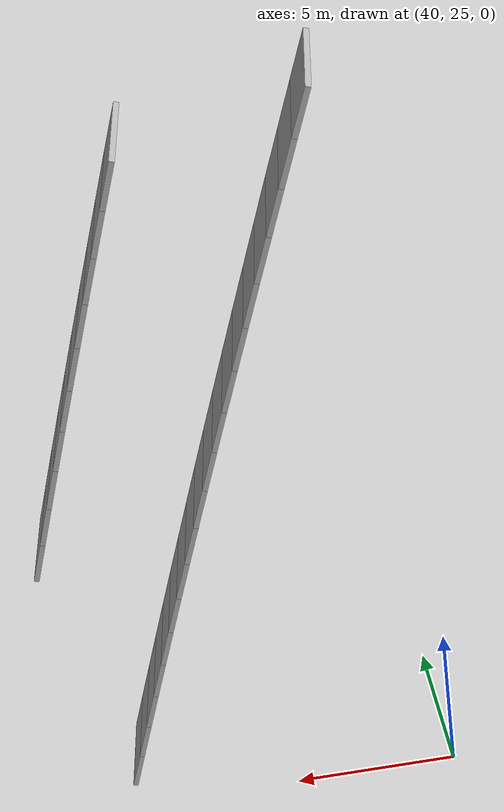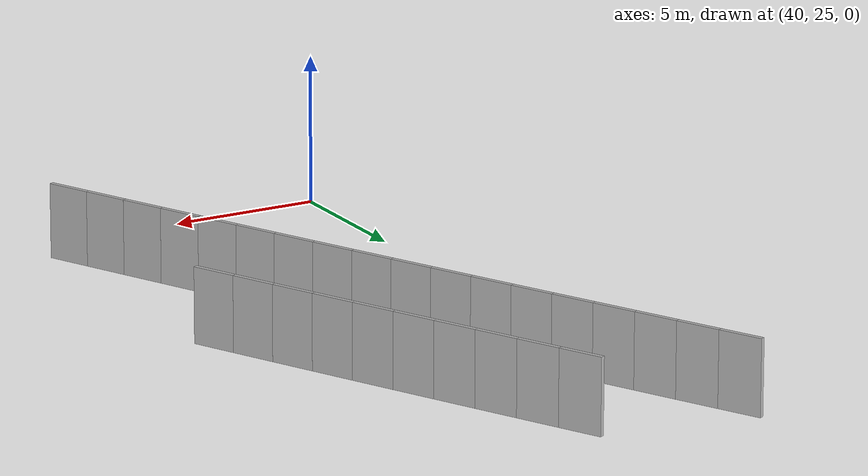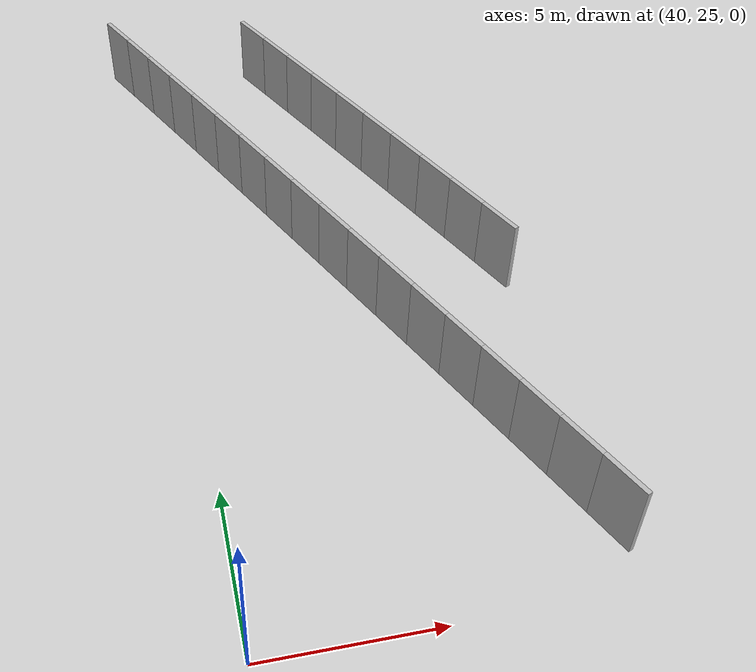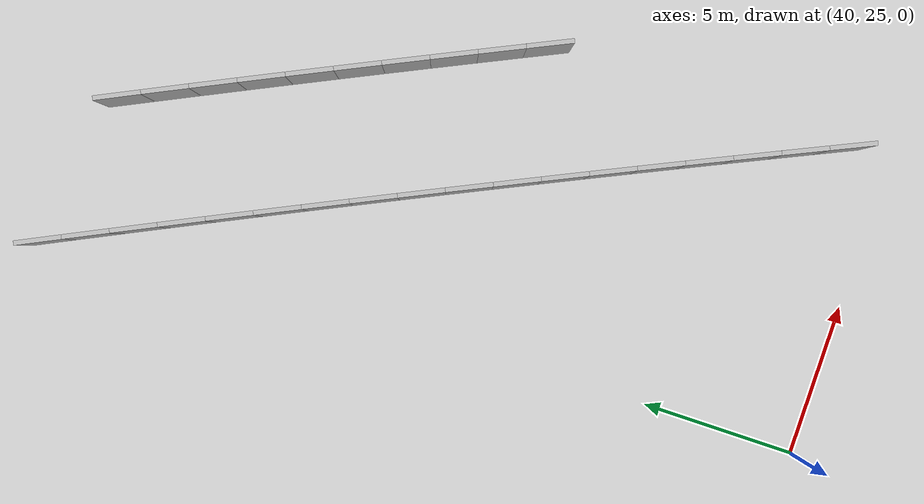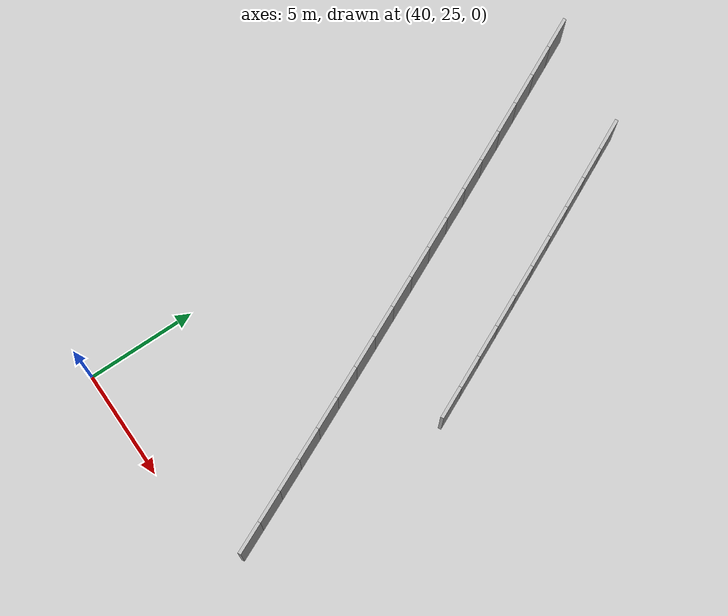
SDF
<?xml version="1.0" ?>
<sdf version="1.6">
  <model name="sps_4335">
    <pose frame="">0 0 0 0 -0 0</pose>
    <static>1</static>
    <self_collide>0</self_collide>
    <allow_auto_disable>0</allow_auto_disable>
    <link name="Wall10191">
      <kinematic>0</kinematic>
      <gravity>1</gravity>
      <self_collide>0</self_collide>
      <collision name="collision">
        <geometry>
          <box>
            <size>1.49636 0.15 2.5</size>
          </box>
        </geometry>
        <pose frame="">0 0 0 0 -0 0</pose>
      </collision>
      <visual name="visual">
        <geometry>
          <box>
            <size>1.49636 0.15 2.5</size>
          </box>
        </geometry>
        <pose frame="">0 0 0 0 -0 0</pose>
        <cast_shadows>1</cast_shadows>
        <transparency>0.0</transparency>
      </visual>
      <pose frame="">49.7951 26.7851 1.25 0 -0 1.99711</pose>
    </link>
    <link name="Wall10192">
      <kinematic>0</kinematic>
      <gravity>1</gravity>
      <self_collide>0</self_collide>
      <collision name="collision">
        <geometry>
          <box>
            <size>1.49652 0.15 2.5</size>
          </box>
        </geometry>
        <pose frame="">0 0 0 0 -0 0</pose>
      </collision>
      <visual name="visual">
        <geometry>
          <box>
            <size>1.49652 0.15 2.5</size>
          </box>
        </geometry>
        <pose frame="">0 0 0 0 -0 0</pose>
        <cast_shadows>1</cast_shadows>
        <transparency>0.0</transparency>
      </visual>
      <pose frame="">49.1752 28.1471 1.25 0 -0 1.99872</pose>
    </link>
    <link name="Wall10193">
      <kinematic>0</kinematic>
      <gravity>1</gravity>
      <self_collide>0</self_collide>
      <collision name="collision">
        <geometry>
          <box>
            <size>1.49652 0.15 2.5</size>
          </box>
        </geometry>
        <pose frame="">0 0 0 0 -0 0</pose>
      </collision>
      <visual name="visual">
        <geometry>
          <box>
            <size>1.49652 0.15 2.5</size>
          </box>
        </geometry>
        <pose frame="">0 0 0 0 -0 0</pose>
        <cast_shadows>1</cast_shadows>
        <transparency>0.0</transparency>
      </visual>
      <pose frame="">48.5531 29.5082 1.25 0 -0 2.00029</pose>
    </link>
    <link name="Wall10194">
      <kinematic>0</kinematic>
      <gravity>1</gravity>
      <self_collide>0</self_collide>
      <collision name="collision">
        <geometry>
          <box>
            <size>1.49635 0.15 2.5</size>
          </box>
        </geometry>
        <pose frame="">0 0 0 0 -0 0</pose>
      </collision>
      <visual name="visual">
        <geometry>
          <box>
            <size>1.49635 0.15 2.5</size>
          </box>
        </geometry>
        <pose frame="">0 0 0 0 -0 0</pose>
        <cast_shadows>1</cast_shadows>
        <transparency>0.0</transparency>
      </visual>
      <pose frame="">47.9288 30.8682 1.25 0 -0 2.002</pose>
    </link>
    <link name="Wall10195">
      <kinematic>0</kinematic>
      <gravity>1</gravity>
      <self_collide>0</self_collide>
      <collision name="collision">
        <geometry>
          <box>
            <size>1.4965 0.15 2.5</size>
          </box>
        </geometry>
        <pose frame="">0 0 0 0 -0 0</pose>
      </collision>
      <visual name="visual">
        <geometry>
          <box>
            <size>1.4965 0.15 2.5</size>
          </box>
        </geometry>
        <pose frame="">0 0 0 0 -0 0</pose>
        <cast_shadows>1</cast_shadows>
        <transparency>0.0</transparency>
      </visual>
      <pose frame="">47.3024 32.2272 1.25 0 -0 2.00339</pose>
    </link>
    <link name="Wall10196">
      <kinematic>0</kinematic>
      <gravity>1</gravity>
      <self_collide>0</self_collide>
      <collision name="collision">
        <geometry>
          <box>
            <size>1.49651 0.15 2.5</size>
          </box>
        </geometry>
        <pose frame="">0 0 0 0 -0 0</pose>
      </collision>
      <visual name="visual">
        <geometry>
          <box>
            <size>1.49651 0.15 2.5</size>
          </box>
        </geometry>
        <pose frame="">0 0 0 0 -0 0</pose>
        <cast_shadows>1</cast_shadows>
        <transparency>0.0</transparency>
      </visual>
      <pose frame="">46.6739 33.5853 1.25 0 -0 2.00506</pose>
    </link>
    <link name="Wall10197">
      <kinematic>0</kinematic>
      <gravity>1</gravity>
      <self_collide>0</self_collide>
      <collision name="collision">
        <geometry>
          <box>
            <size>1.49647 0.15 2.5</size>
          </box>
        </geometry>
        <pose frame="">0 0 0 0 -0 0</pose>
      </collision>
      <visual name="visual">
        <geometry>
          <box>
            <size>1.49647 0.15 2.5</size>
          </box>
        </geometry>
        <pose frame="">0 0 0 0 -0 0</pose>
        <cast_shadows>1</cast_shadows>
        <transparency>0.0</transparency>
      </visual>
      <pose frame="">46.0431 34.9424 1.25 0 -0 2.00664</pose>
    </link>
    <link name="Wall10198">
      <kinematic>0</kinematic>
      <gravity>1</gravity>
      <self_collide>0</self_collide>
      <collision name="collision">
        <geometry>
          <box>
            <size>1.49666 0.15 2.5</size>
          </box>
        </geometry>
        <pose frame="">0 0 0 0 -0 0</pose>
      </collision>
      <visual name="visual">
        <geometry>
          <box>
            <size>1.49666 0.15 2.5</size>
          </box>
        </geometry>
        <pose frame="">0 0 0 0 -0 0</pose>
        <cast_shadows>1</cast_shadows>
        <transparency>0.0</transparency>
      </visual>
      <pose frame="">45.4104 36.2986 1.25 0 -0 2.00807</pose>
    </link>
    <link name="Wall10199">
      <kinematic>0</kinematic>
      <gravity>1</gravity>
      <self_collide>0</self_collide>
      <collision name="collision">
        <geometry>
          <box>
            <size>1.49643 0.15 2.5</size>
          </box>
        </geometry>
        <pose frame="">0 0 0 0 -0 0</pose>
      </collision>
      <visual name="visual">
        <geometry>
          <box>
            <size>1.49643 0.15 2.5</size>
          </box>
        </geometry>
        <pose frame="">0 0 0 0 -0 0</pose>
        <cast_shadows>1</cast_shadows>
        <transparency>0.0</transparency>
      </visual>
      <pose frame="">44.7755 37.6538 1.25 0 -0 2.00976</pose>
    </link>
    <link name="Wall10200">
      <kinematic>0</kinematic>
      <gravity>1</gravity>
      <self_collide>0</self_collide>
      <collision name="collision">
        <geometry>
          <box>
            <size>1.49656 0.15 2.5</size>
          </box>
        </geometry>
        <pose frame="">0 0 0 0 -0 0</pose>
      </collision>
      <visual name="visual">
        <geometry>
          <box>
            <size>1.49656 0.15 2.5</size>
          </box>
        </geometry>
        <pose frame="">0 0 0 0 -0 0</pose>
        <cast_shadows>1</cast_shadows>
        <transparency>0.0</transparency>
      </visual>
      <pose frame="">44.1384 39.0079 1.25 0 -0 2.01139</pose>
    </link>
    <link name="Wall10201">
      <kinematic>0</kinematic>
      <gravity>1</gravity>
      <self_collide>0</self_collide>
      <collision name="collision">
        <geometry>
          <box>
            <size>1.49653 0.15 2.5</size>
          </box>
        </geometry>
        <pose frame="">0 0 0 0 -0 0</pose>
      </collision>
      <visual name="visual">
        <geometry>
          <box>
            <size>1.49653 0.15 2.5</size>
          </box>
        </geometry>
        <pose frame="">0 0 0 0 -0 0</pose>
        <cast_shadows>1</cast_shadows>
        <transparency>0.0</transparency>
      </visual>
      <pose frame="">43.499 40.361 1.25 0 -0 2.01297</pose>
    </link>
    <link name="Wall10202">
      <kinematic>0</kinematic>
      <gravity>1</gravity>
      <self_collide>0</self_collide>
      <collision name="collision">
        <geometry>
          <box>
            <size>1.49654 0.15 2.5</size>
          </box>
        </geometry>
        <pose frame="">0 0 0 0 -0 0</pose>
      </collision>
      <visual name="visual">
        <geometry>
          <box>
            <size>1.49654 0.15 2.5</size>
          </box>
        </geometry>
        <pose frame="">0 0 0 0 -0 0</pose>
        <cast_shadows>1</cast_shadows>
        <transparency>0.0</transparency>
      </visual>
      <pose frame="">42.8576 41.7131 1.25 0 -0 2.0146</pose>
    </link>
    <link name="Wall10203">
      <kinematic>0</kinematic>
      <gravity>1</gravity>
      <self_collide>0</self_collide>
      <collision name="collision">
        <geometry>
          <box>
            <size>1.49658 0.15 2.5</size>
          </box>
        </geometry>
        <pose frame="">0 0 0 0 -0 0</pose>
      </collision>
      <visual name="visual">
        <geometry>
          <box>
            <size>1.49658 0.15 2.5</size>
          </box>
        </geometry>
        <pose frame="">0 0 0 0 -0 0</pose>
        <cast_shadows>1</cast_shadows>
        <transparency>0.0</transparency>
      </visual>
      <pose frame="">42.214 43.0642 1.25 0 -0 2.01608</pose>
    </link>
    <link name="Wall10204">
      <kinematic>0</kinematic>
      <gravity>1</gravity>
      <self_collide>0</self_collide>
      <collision name="collision">
        <geometry>
          <box>
            <size>1.49646 0.15 2.5</size>
          </box>
        </geometry>
        <pose frame="">0 0 0 0 -0 0</pose>
      </collision>
      <visual name="visual">
        <geometry>
          <box>
            <size>1.49646 0.15 2.5</size>
          </box>
        </geometry>
        <pose frame="">0 0 0 0 -0 0</pose>
        <cast_shadows>1</cast_shadows>
        <transparency>0.0</transparency>
      </visual>
      <pose frame="">41.5684 44.4143 1.25 0 -0 2.01761</pose>
    </link>
    <link name="Wall10205">
      <kinematic>0</kinematic>
      <gravity>1</gravity>
      <self_collide>0</self_collide>
      <collision name="collision">
        <geometry>
          <box>
            <size>1.49642 0.15 2.5</size>
          </box>
        </geometry>
        <pose frame="">0 0 0 0 -0 0</pose>
      </collision>
      <visual name="visual">
        <geometry>
          <box>
            <size>1.49642 0.15 2.5</size>
          </box>
        </geometry>
        <pose frame="">0 0 0 0 -0 0</pose>
        <cast_shadows>1</cast_shadows>
        <transparency>0.0</transparency>
      </visual>
      <pose frame="">40.9207 45.7633 1.25 0 -0 2.01925</pose>
    </link>
    <link name="Wall10206">
      <kinematic>0</kinematic>
      <gravity>1</gravity>
      <self_collide>0</self_collide>
      <collision name="collision">
        <geometry>
          <box>
            <size>1.49671 0.15 2.5</size>
          </box>
        </geometry>
        <pose frame="">0 0 0 0 -0 0</pose>
      </collision>
      <visual name="visual">
        <geometry>
          <box>
            <size>1.49671 0.15 2.5</size>
          </box>
        </geometry>
        <pose frame="">0 0 0 0 -0 0</pose>
        <cast_shadows>1</cast_shadows>
        <transparency>0.0</transparency>
      </visual>
      <pose frame="">40.2707 47.1113 1.25 0 -0 2.02097</pose>
    </link>
    <link name="Wall10207">
      <kinematic>0</kinematic>
      <gravity>1</gravity>
      <self_collide>0</self_collide>
      <collision name="collision">
        <geometry>
          <box>
            <size>1.49646 0.15 2.5</size>
          </box>
        </geometry>
        <pose frame="">0 0 0 0 -0 0</pose>
      </collision>
      <visual name="visual">
        <geometry>
          <box>
            <size>1.49646 0.15 2.5</size>
          </box>
        </geometry>
        <pose frame="">0 0 0 0 -0 0</pose>
        <cast_shadows>1</cast_shadows>
        <transparency>0.0</transparency>
      </visual>
      <pose frame="">39.6184 48.4583 1.25 0 -0 2.0225</pose>
    </link>
    <link name="Wall10208">
      <kinematic>0</kinematic>
      <gravity>1</gravity>
      <self_collide>0</self_collide>
      <collision name="collision">
        <geometry>
          <box>
            <size>1.49654 0.15 2.5</size>
          </box>
        </geometry>
        <pose frame="">0 0 0 0 -0 0</pose>
      </collision>
      <visual name="visual">
        <geometry>
          <box>
            <size>1.49654 0.15 2.5</size>
          </box>
        </geometry>
        <pose frame="">0 0 0 0 -0 0</pose>
        <cast_shadows>1</cast_shadows>
        <transparency>0.0</transparency>
      </visual>
      <pose frame="">38.9641 49.8042 1.25 0 -0 2.0241</pose>
    </link>
    <link name="Wall10794">
      <kinematic>0</kinematic>
      <gravity>1</gravity>
      <self_collide>0</self_collide>
      <collision name="collision">
        <geometry>
          <box>
            <size>1.50305 0.15 2.5</size>
          </box>
        </geometry>
        <pose frame="">0 0 0 0 -0 0</pose>
      </collision>
      <visual name="visual">
        <geometry>
          <box>
            <size>1.50305 0.15 2.5</size>
          </box>
        </geometry>
        <pose frame="">0 0 0 0 -0 0</pose>
        <cast_shadows>1</cast_shadows>
        <transparency>0.0</transparency>
      </visual>
      <pose frame="">49.796 36.6906 1.25 0 -0 2.00653</pose>
    </link>
    <link name="Wall10795">
      <kinematic>0</kinematic>
      <gravity>1</gravity>
      <self_collide>0</self_collide>
      <collision name="collision">
        <geometry>
          <box>
            <size>1.50304 0.15 2.5</size>
          </box>
        </geometry>
        <pose frame="">0 0 0 0 -0 0</pose>
      </collision>
      <visual name="visual">
        <geometry>
          <box>
            <size>1.50304 0.15 2.5</size>
          </box>
        </geometry>
        <pose frame="">0 0 0 0 -0 0</pose>
        <cast_shadows>1</cast_shadows>
        <transparency>0.0</transparency>
      </visual>
      <pose frame="">49.1605 38.0527 1.25 0 -0 2.00814</pose>
    </link>
    <link name="Wall10796">
      <kinematic>0</kinematic>
      <gravity>1</gravity>
      <self_collide>0</self_collide>
      <collision name="collision">
        <geometry>
          <box>
            <size>1.50317 0.15 2.5</size>
          </box>
        </geometry>
        <pose frame="">0 0 0 0 -0 0</pose>
      </collision>
      <visual name="visual">
        <geometry>
          <box>
            <size>1.50317 0.15 2.5</size>
          </box>
        </geometry>
        <pose frame="">0 0 0 0 -0 0</pose>
        <cast_shadows>1</cast_shadows>
        <transparency>0.0</transparency>
      </visual>
      <pose frame="">48.5228 39.4138 1.25 0 -0 2.00985</pose>
    </link>
    <link name="Wall10797">
      <kinematic>0</kinematic>
      <gravity>1</gravity>
      <self_collide>0</self_collide>
      <collision name="collision">
        <geometry>
          <box>
            <size>1.50314 0.15 2.5</size>
          </box>
        </geometry>
        <pose frame="">0 0 0 0 -0 0</pose>
      </collision>
      <visual name="visual">
        <geometry>
          <box>
            <size>1.50314 0.15 2.5</size>
          </box>
        </geometry>
        <pose frame="">0 0 0 0 -0 0</pose>
        <cast_shadows>1</cast_shadows>
        <transparency>0.0</transparency>
      </visual>
      <pose frame="">47.8828 40.7739 1.25 0 -0 2.01134</pose>
    </link>
    <link name="Wall10798">
      <kinematic>0</kinematic>
      <gravity>1</gravity>
      <self_collide>0</self_collide>
      <collision name="collision">
        <geometry>
          <box>
            <size>1.503 0.15 2.5</size>
          </box>
        </geometry>
        <pose frame="">0 0 0 0 -0 0</pose>
      </collision>
      <visual name="visual">
        <geometry>
          <box>
            <size>1.503 0.15 2.5</size>
          </box>
        </geometry>
        <pose frame="">0 0 0 0 -0 0</pose>
        <cast_shadows>1</cast_shadows>
        <transparency>0.0</transparency>
      </visual>
      <pose frame="">47.2407 42.1329 1.25 0 -0 2.01305</pose>
    </link>
    <link name="Wall10799">
      <kinematic>0</kinematic>
      <gravity>1</gravity>
      <self_collide>0</self_collide>
      <collision name="collision">
        <geometry>
          <box>
            <size>1.50312 0.15 2.5</size>
          </box>
        </geometry>
        <pose frame="">0 0 0 0 -0 0</pose>
      </collision>
      <visual name="visual">
        <geometry>
          <box>
            <size>1.50312 0.15 2.5</size>
          </box>
        </geometry>
        <pose frame="">0 0 0 0 -0 0</pose>
        <cast_shadows>1</cast_shadows>
        <transparency>0.0</transparency>
      </visual>
      <pose frame="">46.5964 43.4909 1.25 0 -0 2.01445</pose>
    </link>
    <link name="Wall10800">
      <kinematic>0</kinematic>
      <gravity>1</gravity>
      <self_collide>0</self_collide>
      <collision name="collision">
        <geometry>
          <box>
            <size>1.50297 0.15 2.5</size>
          </box>
        </geometry>
        <pose frame="">0 0 0 0 -0 0</pose>
      </collision>
      <visual name="visual">
        <geometry>
          <box>
            <size>1.50297 0.15 2.5</size>
          </box>
        </geometry>
        <pose frame="">0 0 0 0 -0 0</pose>
        <cast_shadows>1</cast_shadows>
        <transparency>0.0</transparency>
      </visual>
      <pose frame="">45.9501 44.8479 1.25 0 -0 2.01612</pose>
    </link>
    <link name="Wall10801">
      <kinematic>0</kinematic>
      <gravity>1</gravity>
      <self_collide>0</self_collide>
      <collision name="collision">
        <geometry>
          <box>
            <size>1.5032 0.15 2.5</size>
          </box>
        </geometry>
        <pose frame="">0 0 0 0 -0 0</pose>
      </collision>
      <visual name="visual">
        <geometry>
          <box>
            <size>1.5032 0.15 2.5</size>
          </box>
        </geometry>
        <pose frame="">0 0 0 0 -0 0</pose>
        <cast_shadows>1</cast_shadows>
        <transparency>0.0</transparency>
      </visual>
      <pose frame="">45.3016 46.2039 1.25 0 -0 2.01766</pose>
    </link>
    <link name="Wall10802">
      <kinematic>0</kinematic>
      <gravity>1</gravity>
      <self_collide>0</self_collide>
      <collision name="collision">
        <geometry>
          <box>
            <size>1.503 0.15 2.5</size>
          </box>
        </geometry>
        <pose frame="">0 0 0 0 -0 0</pose>
      </collision>
      <visual name="visual">
        <geometry>
          <box>
            <size>1.503 0.15 2.5</size>
          </box>
        </geometry>
        <pose frame="">0 0 0 0 -0 0</pose>
        <cast_shadows>1</cast_shadows>
        <transparency>0.0</transparency>
      </visual>
      <pose frame="">44.6511 47.5589 1.25 0 -0 2.01917</pose>
    </link>
    <link name="Wall10803">
      <kinematic>0</kinematic>
      <gravity>1</gravity>
      <self_collide>0</self_collide>
      <collision name="collision">
        <geometry>
          <box>
            <size>1.50304 0.15 2.5</size>
          </box>
        </geometry>
        <pose frame="">0 0 0 0 -0 0</pose>
      </collision>
      <visual name="visual">
        <geometry>
          <box>
            <size>1.50304 0.15 2.5</size>
          </box>
        </geometry>
        <pose frame="">0 0 0 0 -0 0</pose>
        <cast_shadows>1</cast_shadows>
        <transparency>0.0</transparency>
      </visual>
      <pose frame="">43.9984 48.9128 1.25 0 -0 2.02082</pose>
    </link>
  </model>
</sdf>
